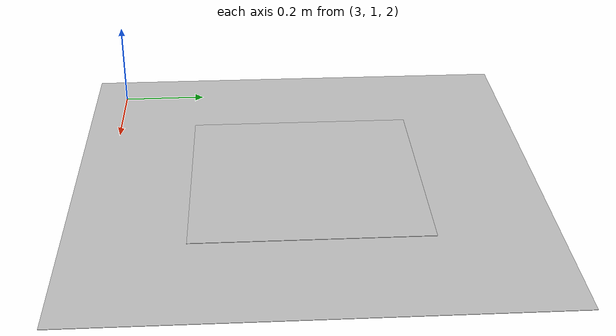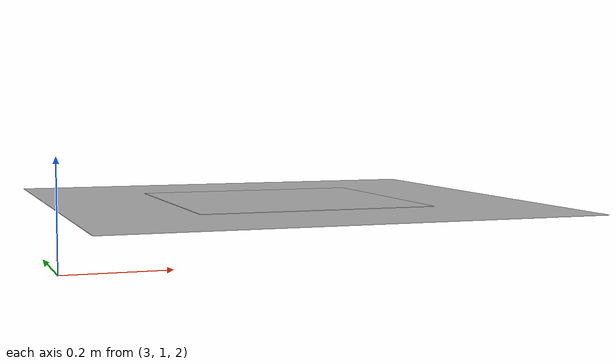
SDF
<?xml version="1.0" ?>
<sdf version="1.5">
	<model name="campo_gara">
	<static>true</static>
		<link name="p10">
    		<pose>3.55 1.445 2.072 0 0 0</pose>
			<visual name="p10_visual">
				<geometry>
					<box> <size> 1.0 1.0 0.001 </size> </box>
				</geometry>
				<material>
					<script>
						<uri>model://campo_gara/materials/scripts</uri>
						<uri>model://campo_gara/materials/textures</uri>
						<name>campo_gara/aruco_background</name>
					</script>
				</material>
				<cast_shadows>false</cast_shadows>
			</visual>
		</link>

		<joint name="p10_aruco10_joint" type="fixed">
			<parent>p10</parent>
			<child>aruco10</child>
		</joint>

		<link name="aruco10">
    		<pose>3.55 1.445 2.074 0 0 0</pose>
			<visual name="aruco10_visual">
				<geometry>
					<box> <size> 0.5 0.5 0.001 </size> </box>
				</geometry>
				<material>
					<script>
						<uri>model://campo_gara/materials/scripts</uri>
						<uri>model://campo_gara/materials/textures</uri>
						<name>campo_gara/area10</name>
					</script>
				</material>
				<cast_shadows>false</cast_shadows>
			</visual>
		</link>

	</model>
</sdf>
